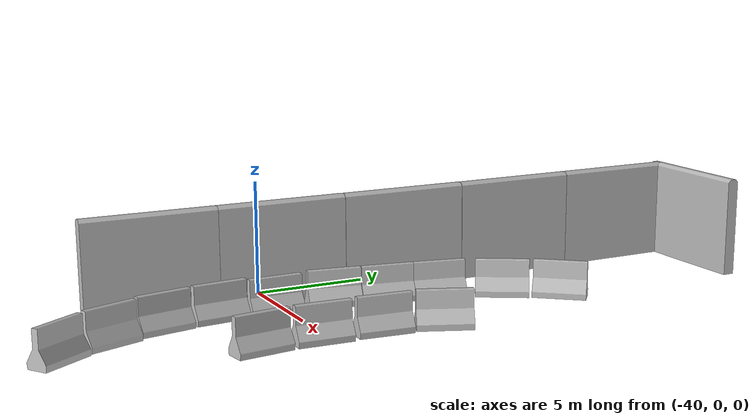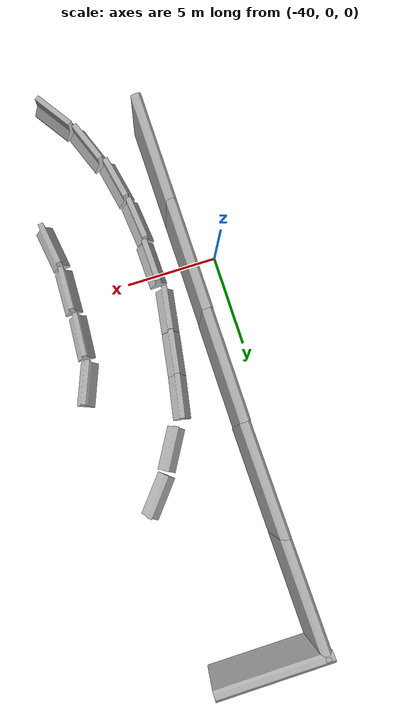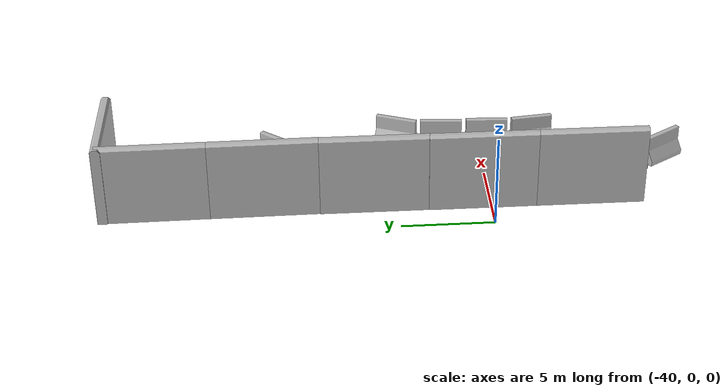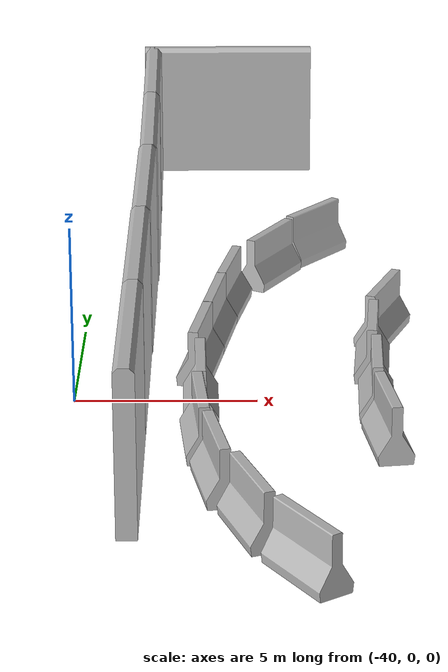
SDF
<sdf version="1.7">
 <world name="default">
  <model name="aws_robomaker_racetrack_StonePier_01_45">
   <frame name="aws_StonePier_01::__model__" attached_to="aws_StonePier_01::body">
    <pose relative_to="__model__">0 0 0 0 -0 0</pose>
   </frame>
   <link name="aws_StonePier_01::body">
    <pose relative_to="aws_StonePier_01::__model__">0 0 0 0 -0 0</pose>
    <inertial>
     <mass>10</mass>
     <inertia><ixx>0</ixx><ixy>0</ixy><ixz>0</ixz><iyy>0</iyy><iyz>0</iyz><izz>0</izz></inertia>
    </inertial>
    <visual name="visual">
     <geometry>
      <mesh><uri>file://models/aws_robomaker_racetrack_StonePier_01/meshes/aws_StonePier_01_visual.DAE</uri></mesh>
     </geometry>
     <material><shader type="pixel"><normal_map>__default__</normal_map></shader></material>
     <meta><layer>0</layer></meta>
    </visual>
    <collision name="collision_0">
     <geometry>
      <mesh>
       <uri>file://models/aws_robomaker_racetrack_StonePier_01/meshes/aws_StonePier_01_collision.DAE</uri>
       <scale>1 1 1</scale>
      </mesh>
     </geometry>
     <surface>
      <friction>
       <ode><mu>1</mu><mu2>1</mu2><fdir1>0 0 0</fdir1><slip1>0</slip1><slip2>0</slip2></ode>
       <torsional>
        <coefficient>1</coefficient>
        <patch_radius>0</patch_radius>
        <surface_radius>0</surface_radius>
        <use_patch_radius>1</use_patch_radius>
        <ode><slip>0</slip></ode>
       </torsional>
      </friction>
      <bounce><restitution_coefficient>0</restitution_coefficient><threshold>1e+06</threshold></bounce>
      <contact>
       <collide_without_contact>0</collide_without_contact>
       <collide_without_contact_bitmask>1</collide_without_contact_bitmask>
       <collide_bitmask>1</collide_bitmask>
       <ode>
        <soft_cfm>0</soft_cfm>
        <soft_erp>0.2</soft_erp>
        <kp>1e+13</kp>
        <kd>1</kd>
        <max_vel>0.01</max_vel>
        <min_depth>0</min_depth>
       </ode>
       <bullet>
        <split_impulse>1</split_impulse>
        <split_impulse_penetration_threshold>-0.01</split_impulse_penetration_threshold>
        <soft_cfm>0</soft_cfm>
        <soft_erp>0.2</soft_erp>
        <kp>1e+13</kp>
        <kd>1</kd>
       </bullet>
      </contact>
     </surface>
    </collision>
   </link>
   <static>1</static>
   <pose>-31.6395 -3.07904 0.054 0 0 -1.43795</pose>
  </model>
  <model name="aws_robomaker_racetrack_StonePier_01_46">
   <frame name="aws_StonePier_01::__model__" attached_to="aws_StonePier_01::body">
    <pose relative_to="__model__">0 0 0 0 -0 0</pose>
   </frame>
   <link name="aws_StonePier_01::body">
    <pose relative_to="aws_StonePier_01::__model__">0 0 0 0 -0 0</pose>
    <inertial>
     <mass>10</mass>
     <inertia><ixx>0</ixx><ixy>0</ixy><ixz>0</ixz><iyy>0</iyy><iyz>0</iyz><izz>0</izz></inertia>
    </inertial>
    <visual name="visual">
     <geometry>
      <mesh><uri>file://models/aws_robomaker_racetrack_StonePier_01/meshes/aws_StonePier_01_visual.DAE</uri></mesh>
     </geometry>
     <material><shader type="pixel"><normal_map>__default__</normal_map></shader></material>
     <meta><layer>0</layer></meta>
    </visual>
    <collision name="collision_0">
     <geometry>
      <mesh>
       <uri>file://models/aws_robomaker_racetrack_StonePier_01/meshes/aws_StonePier_01_collision.DAE</uri>
       <scale>1 1 1</scale>
      </mesh>
     </geometry>
     <surface>
      <friction>
       <ode><mu>1</mu><mu2>1</mu2><fdir1>0 0 0</fdir1><slip1>0</slip1><slip2>0</slip2></ode>
       <torsional>
        <coefficient>1</coefficient>
        <patch_radius>0</patch_radius>
        <surface_radius>0</surface_radius>
        <use_patch_radius>1</use_patch_radius>
        <ode><slip>0</slip></ode>
       </torsional>
      </friction>
      <bounce><restitution_coefficient>0</restitution_coefficient><threshold>1e+06</threshold></bounce>
      <contact>
       <collide_without_contact>0</collide_without_contact>
       <collide_without_contact_bitmask>1</collide_without_contact_bitmask>
       <collide_bitmask>1</collide_bitmask>
       <ode>
        <soft_cfm>0</soft_cfm>
        <soft_erp>0.2</soft_erp>
        <kp>1e+13</kp>
        <kd>1</kd>
        <max_vel>0.01</max_vel>
        <min_depth>0</min_depth>
       </ode>
       <bullet>
        <split_impulse>1</split_impulse>
        <split_impulse_penetration_threshold>-0.01</split_impulse_penetration_threshold>
        <soft_cfm>0</soft_cfm>
        <soft_erp>0.2</soft_erp>
        <kp>1e+13</kp>
        <kd>1</kd>
       </bullet>
      </contact>
     </surface>
    </collision>
   </link>
   <static>1</static>
   <pose>-31.7709 -0.48849 0.054 0 0 -1.61074</pose>
  </model>
  <model name="aws_robomaker_racetrack_StonePier_01_47">
   <frame name="aws_StonePier_01::__model__" attached_to="aws_StonePier_01::body">
    <pose relative_to="__model__">0 0 0 0 -0 0</pose>
   </frame>
   <link name="aws_StonePier_01::body">
    <pose relative_to="aws_StonePier_01::__model__">0 0 0 0 -0 0</pose>
    <inertial>
     <mass>10</mass>
     <inertia><ixx>0</ixx><ixy>0</ixy><ixz>0</ixz><iyy>0</iyy><iyz>0</iyz><izz>0</izz></inertia>
    </inertial>
    <visual name="visual">
     <geometry>
      <mesh><uri>file://models/aws_robomaker_racetrack_StonePier_01/meshes/aws_StonePier_01_visual.DAE</uri></mesh>
     </geometry>
     <material><shader type="pixel"><normal_map>__default__</normal_map></shader></material>
     <meta><layer>0</layer></meta>
    </visual>
    <collision name="collision_0">
     <geometry>
      <mesh>
       <uri>file://models/aws_robomaker_racetrack_StonePier_01/meshes/aws_StonePier_01_collision.DAE</uri>
       <scale>1 1 1</scale>
      </mesh>
     </geometry>
     <surface>
      <friction>
       <ode><mu>1</mu><mu2>1</mu2><fdir1>0 0 0</fdir1><slip1>0</slip1><slip2>0</slip2></ode>
       <torsional>
        <coefficient>1</coefficient>
        <patch_radius>0</patch_radius>
        <surface_radius>0</surface_radius>
        <use_patch_radius>1</use_patch_radius>
        <ode><slip>0</slip></ode>
       </torsional>
      </friction>
      <bounce><restitution_coefficient>0</restitution_coefficient><threshold>1e+06</threshold></bounce>
      <contact>
       <collide_without_contact>0</collide_without_contact>
       <collide_without_contact_bitmask>1</collide_without_contact_bitmask>
       <collide_bitmask>1</collide_bitmask>
       <ode>
        <soft_cfm>0</soft_cfm>
        <soft_erp>0.2</soft_erp>
        <kp>1e+13</kp>
        <kd>1</kd>
        <max_vel>0.01</max_vel>
        <min_depth>0</min_depth>
       </ode>
       <bullet>
        <split_impulse>1</split_impulse>
        <split_impulse_penetration_threshold>-0.01</split_impulse_penetration_threshold>
        <soft_cfm>0</soft_cfm>
        <soft_erp>0.2</soft_erp>
        <kp>1e+13</kp>
        <kd>1</kd>
       </bullet>
      </contact>
     </surface>
    </collision>
   </link>
   <static>1</static>
   <pose>-31.7363 2.12666 0.054 0 0 -1.64853</pose>
  </model>
  <model name="aws_robomaker_racetrack_StonePier_01_48">
   <frame name="aws_StonePier_01::__model__" attached_to="aws_StonePier_01::body">
    <pose relative_to="__model__">0 0 0 0 -0 0</pose>
   </frame>
   <link name="aws_StonePier_01::body">
    <pose relative_to="aws_StonePier_01::__model__">0 0 0 0 -0 0</pose>
    <inertial>
     <mass>10</mass>
     <inertia><ixx>0</ixx><ixy>0</ixy><ixz>0</ixz><iyy>0</iyy><iyz>0</iyz><izz>0</izz></inertia>
    </inertial>
    <visual name="visual">
     <geometry>
      <mesh><uri>file://models/aws_robomaker_racetrack_StonePier_01/meshes/aws_StonePier_01_visual.DAE</uri></mesh>
     </geometry>
     <material><shader type="pixel"><normal_map>__default__</normal_map></shader></material>
     <meta><layer>0</layer></meta>
    </visual>
    <collision name="collision_0">
     <geometry>
      <mesh>
       <uri>file://models/aws_robomaker_racetrack_StonePier_01/meshes/aws_StonePier_01_collision.DAE</uri>
       <scale>1 1 1</scale>
      </mesh>
     </geometry>
     <surface>
      <friction>
       <ode><mu>1</mu><mu2>1</mu2><fdir1>0 0 0</fdir1><slip1>0</slip1><slip2>0</slip2></ode>
       <torsional>
        <coefficient>1</coefficient>
        <patch_radius>0</patch_radius>
        <surface_radius>0</surface_radius>
        <use_patch_radius>1</use_patch_radius>
        <ode><slip>0</slip></ode>
       </torsional>
      </friction>
      <bounce><restitution_coefficient>0</restitution_coefficient><threshold>1e+06</threshold></bounce>
      <contact>
       <collide_without_contact>0</collide_without_contact>
       <collide_without_contact_bitmask>1</collide_without_contact_bitmask>
       <collide_bitmask>1</collide_bitmask>
       <ode>
        <soft_cfm>0</soft_cfm>
        <soft_erp>0.2</soft_erp>
        <kp>1e+13</kp>
        <kd>1</kd>
        <max_vel>0.01</max_vel>
        <min_depth>0</min_depth>
       </ode>
       <bullet>
        <split_impulse>1</split_impulse>
        <split_impulse_penetration_threshold>-0.01</split_impulse_penetration_threshold>
        <soft_cfm>0</soft_cfm>
        <soft_erp>0.2</soft_erp>
        <kp>1e+13</kp>
        <kd>1</kd>
       </bullet>
      </contact>
     </surface>
    </collision>
   </link>
   <static>1</static>
   <pose>-31.2901 4.63965 0.054 0 0 -1.9545</pose>
  </model>
  <model name="aws_robomaker_racetrack_StonePier_01_55">
   <frame name="aws_StonePier_01::__model__" attached_to="aws_StonePier_01::body">
    <pose relative_to="__model__">0 0 0 0 -0 0</pose>
   </frame>
   <link name="aws_StonePier_01::body">
    <pose relative_to="aws_StonePier_01::__model__">0 0 0 0 -0 0</pose>
    <inertial>
     <mass>10</mass>
     <inertia><ixx>0</ixx><ixy>0</ixy><ixz>0</ixz><iyy>0</iyy><iyz>0</iyz><izz>0</izz></inertia>
    </inertial>
    <visual name="visual">
     <geometry>
      <mesh><uri>file://models/aws_robomaker_racetrack_StonePier_01/meshes/aws_StonePier_01_visual.DAE</uri></mesh>
     </geometry>
     <material><shader type="pixel"><normal_map>__default__</normal_map></shader></material>
     <meta><layer>0</layer></meta>
    </visual>
    <collision name="collision_0">
     <geometry>
      <mesh>
       <uri>file://models/aws_robomaker_racetrack_StonePier_01/meshes/aws_StonePier_01_collision.DAE</uri>
       <scale>1 1 1</scale>
      </mesh>
     </geometry>
     <surface>
      <friction>
       <ode><mu>1</mu><mu2>1</mu2><fdir1>0 0 0</fdir1><slip1>0</slip1><slip2>0</slip2></ode>
       <torsional>
        <coefficient>1</coefficient>
        <patch_radius>0</patch_radius>
        <surface_radius>0</surface_radius>
        <use_patch_radius>1</use_patch_radius>
        <ode><slip>0</slip></ode>
       </torsional>
      </friction>
      <bounce><restitution_coefficient>0</restitution_coefficient><threshold>1e+06</threshold></bounce>
      <contact>
       <collide_without_contact>0</collide_without_contact>
       <collide_without_contact_bitmask>1</collide_without_contact_bitmask>
       <collide_bitmask>1</collide_bitmask>
       <ode>
        <soft_cfm>0</soft_cfm>
        <soft_erp>0.2</soft_erp>
        <kp>1e+13</kp>
        <kd>1</kd>
        <max_vel>0.01</max_vel>
        <min_depth>0</min_depth>
       </ode>
       <bullet>
        <split_impulse>1</split_impulse>
        <split_impulse_penetration_threshold>-0.01</split_impulse_penetration_threshold>
        <soft_cfm>0</soft_cfm>
        <soft_erp>0.2</soft_erp>
        <kp>1e+13</kp>
        <kd>1</kd>
       </bullet>
      </contact>
     </surface>
    </collision>
   </link>
   <static>1</static>
   <pose>-33.9725 -10.1825 0.054 0 -0 2.15404</pose>
  </model>
  <model name="aws_robomaker_racetrack_StonePier_01_56">
   <frame name="aws_StonePier_01::__model__" attached_to="aws_StonePier_01::body">
    <pose relative_to="__model__">0 0 0 0 -0 0</pose>
   </frame>
   <link name="aws_StonePier_01::body">
    <pose relative_to="aws_StonePier_01::__model__">0 0 0 0 -0 0</pose>
    <inertial>
     <mass>10</mass>
     <inertia><ixx>0</ixx><ixy>0</ixy><ixz>0</ixz><iyy>0</iyy><iyz>0</iyz><izz>0</izz></inertia>
    </inertial>
    <visual name="visual">
     <geometry>
      <mesh><uri>file://models/aws_robomaker_racetrack_StonePier_01/meshes/aws_StonePier_01_visual.DAE</uri></mesh>
     </geometry>
     <material><shader type="pixel"><normal_map>__default__</normal_map></shader></material>
     <meta><layer>0</layer></meta>
    </visual>
    <collision name="collision_0">
     <geometry>
      <mesh>
       <uri>file://models/aws_robomaker_racetrack_StonePier_01/meshes/aws_StonePier_01_collision.DAE</uri>
       <scale>1 1 1</scale>
      </mesh>
     </geometry>
     <surface>
      <friction>
       <ode><mu>1</mu><mu2>1</mu2><fdir1>0 0 0</fdir1><slip1>0</slip1><slip2>0</slip2></ode>
       <torsional>
        <coefficient>1</coefficient>
        <patch_radius>0</patch_radius>
        <surface_radius>0</surface_radius>
        <use_patch_radius>1</use_patch_radius>
        <ode><slip>0</slip></ode>
       </torsional>
      </friction>
      <bounce><restitution_coefficient>0</restitution_coefficient><threshold>1e+06</threshold></bounce>
      <contact>
       <collide_without_contact>0</collide_without_contact>
       <collide_without_contact_bitmask>1</collide_without_contact_bitmask>
       <collide_bitmask>1</collide_bitmask>
       <ode>
        <soft_cfm>0</soft_cfm>
        <soft_erp>0.2</soft_erp>
        <kp>1e+13</kp>
        <kd>1</kd>
        <max_vel>0.01</max_vel>
        <min_depth>0</min_depth>
       </ode>
       <bullet>
        <split_impulse>1</split_impulse>
        <split_impulse_penetration_threshold>-0.01</split_impulse_penetration_threshold>
        <soft_cfm>0</soft_cfm>
        <soft_erp>0.2</soft_erp>
        <kp>1e+13</kp>
        <kd>1</kd>
       </bullet>
      </contact>
     </surface>
    </collision>
   </link>
   <static>1</static>
   <pose>-35.2144 -7.92381 0.054 0 -0 1.91826</pose>
  </model>
  <model name="aws_robomaker_racetrack_StonePier_01_57">
   <frame name="aws_StonePier_01::__model__" attached_to="aws_StonePier_01::body">
    <pose relative_to="__model__">0 0 0 0 -0 0</pose>
   </frame>
   <link name="aws_StonePier_01::body">
    <pose relative_to="aws_StonePier_01::__model__">0 0 0 0 -0 0</pose>
    <inertial>
     <mass>10</mass>
     <inertia><ixx>0</ixx><ixy>0</ixy><ixz>0</ixz><iyy>0</iyy><iyz>0</iyz><izz>0</izz></inertia>
    </inertial>
    <visual name="visual">
     <geometry>
      <mesh><uri>file://models/aws_robomaker_racetrack_StonePier_01/meshes/aws_StonePier_01_visual.DAE</uri></mesh>
     </geometry>
     <material><shader type="pixel"><normal_map>__default__</normal_map></shader></material>
     <meta><layer>0</layer></meta>
    </visual>
    <collision name="collision_0">
     <geometry>
      <mesh>
       <uri>file://models/aws_robomaker_racetrack_StonePier_01/meshes/aws_StonePier_01_collision.DAE</uri>
       <scale>1 1 1</scale>
      </mesh>
     </geometry>
     <surface>
      <friction>
       <ode><mu>1</mu><mu2>1</mu2><fdir1>0 0 0</fdir1><slip1>0</slip1><slip2>0</slip2></ode>
       <torsional>
        <coefficient>1</coefficient>
        <patch_radius>0</patch_radius>
        <surface_radius>0</surface_radius>
        <use_patch_radius>1</use_patch_radius>
        <ode><slip>0</slip></ode>
       </torsional>
      </friction>
      <bounce><restitution_coefficient>0</restitution_coefficient><threshold>1e+06</threshold></bounce>
      <contact>
       <collide_without_contact>0</collide_without_contact>
       <collide_without_contact_bitmask>1</collide_without_contact_bitmask>
       <collide_bitmask>1</collide_bitmask>
       <ode>
        <soft_cfm>0</soft_cfm>
        <soft_erp>0.2</soft_erp>
        <kp>1e+13</kp>
        <kd>1</kd>
        <max_vel>0.01</max_vel>
        <min_depth>0</min_depth>
       </ode>
       <bullet>
        <split_impulse>1</split_impulse>
        <split_impulse_penetration_threshold>-0.01</split_impulse_penetration_threshold>
        <soft_cfm>0</soft_cfm>
        <soft_erp>0.2</soft_erp>
        <kp>1e+13</kp>
        <kd>1</kd>
       </bullet>
      </contact>
     </surface>
    </collision>
   </link>
   <static>1</static>
   <pose>-36.4999 -3.03273 0.054 -0 0.00036 -1.47965</pose>
  </model>
  <model name="aws_robomaker_racetrack_StonePier_01_58">
   <frame name="aws_StonePier_01::__model__" attached_to="aws_StonePier_01::body">
    <pose relative_to="__model__">0 0 0 0 -0 0</pose>
   </frame>
   <link name="aws_StonePier_01::body">
    <pose relative_to="aws_StonePier_01::__model__">0 0 0 0 -0 0</pose>
    <inertial>
     <mass>10</mass>
     <inertia><ixx>0</ixx><ixy>0</ixy><ixz>0</ixz><iyy>0</iyy><iyz>0</iyz><izz>0</izz></inertia>
    </inertial>
    <visual name="visual">
     <geometry>
      <mesh><uri>file://models/aws_robomaker_racetrack_StonePier_01/meshes/aws_StonePier_01_visual.DAE</uri></mesh>
     </geometry>
     <material><shader type="pixel"><normal_map>__default__</normal_map></shader></material>
     <meta><layer>0</layer></meta>
    </visual>
    <collision name="collision_0">
     <geometry>
      <mesh>
       <uri>file://models/aws_robomaker_racetrack_StonePier_01/meshes/aws_StonePier_01_collision.DAE</uri>
       <scale>1 1 1</scale>
      </mesh>
     </geometry>
     <surface>
      <friction>
       <ode><mu>1</mu><mu2>1</mu2><fdir1>0 0 0</fdir1><slip1>0</slip1><slip2>0</slip2></ode>
       <torsional>
        <coefficient>1</coefficient>
        <patch_radius>0</patch_radius>
        <surface_radius>0</surface_radius>
        <use_patch_radius>1</use_patch_radius>
        <ode><slip>0</slip></ode>
       </torsional>
      </friction>
      <bounce><restitution_coefficient>0</restitution_coefficient><threshold>1e+06</threshold></bounce>
      <contact>
       <collide_without_contact>0</collide_without_contact>
       <collide_without_contact_bitmask>1</collide_without_contact_bitmask>
       <collide_bitmask>1</collide_bitmask>
       <ode>
        <soft_cfm>0</soft_cfm>
        <soft_erp>0.2</soft_erp>
        <kp>1e+13</kp>
        <kd>1</kd>
        <max_vel>0.01</max_vel>
        <min_depth>0</min_depth>
       </ode>
       <bullet>
        <split_impulse>1</split_impulse>
        <split_impulse_penetration_threshold>-0.01</split_impulse_penetration_threshold>
        <soft_cfm>0</soft_cfm>
        <soft_erp>0.2</soft_erp>
        <kp>1e+13</kp>
        <kd>1</kd>
       </bullet>
      </contact>
     </surface>
    </collision>
   </link>
   <static>1</static>
   <pose>-36.5369 -0.578473 -0.000468 -0 0.000348 1.59189</pose>
  </model>
  <model name="aws_robomaker_racetrack_StonePier_01_59">
   <frame name="aws_StonePier_01::__model__" attached_to="aws_StonePier_01::body">
    <pose relative_to="__model__">0 0 0 0 -0 0</pose>
   </frame>
   <link name="aws_StonePier_01::body">
    <pose relative_to="aws_StonePier_01::__model__">0 0 0 0 -0 0</pose>
    <inertial>
     <mass>10</mass>
     <inertia><ixx>0</ixx><ixy>0</ixy><ixz>0</ixz><iyy>0</iyy><iyz>0</iyz><izz>0</izz></inertia>
    </inertial>
    <visual name="visual">
     <geometry>
      <mesh><uri>file://models/aws_robomaker_racetrack_StonePier_01/meshes/aws_StonePier_01_visual.DAE</uri></mesh>
     </geometry>
     <material><shader type="pixel"><normal_map>__default__</normal_map></shader></material>
     <meta><layer>0</layer></meta>
    </visual>
    <collision name="collision_0">
     <geometry>
      <mesh>
       <uri>file://models/aws_robomaker_racetrack_StonePier_01/meshes/aws_StonePier_01_collision.DAE</uri>
       <scale>1 1 1</scale>
      </mesh>
     </geometry>
     <surface>
      <friction>
       <ode><mu>1</mu><mu2>1</mu2><fdir1>0 0 0</fdir1><slip1>0</slip1><slip2>0</slip2></ode>
       <torsional>
        <coefficient>1</coefficient>
        <patch_radius>0</patch_radius>
        <surface_radius>0</surface_radius>
        <use_patch_radius>1</use_patch_radius>
        <ode><slip>0</slip></ode>
       </torsional>
      </friction>
      <bounce><restitution_coefficient>0</restitution_coefficient><threshold>1e+06</threshold></bounce>
      <contact>
       <collide_without_contact>0</collide_without_contact>
       <collide_without_contact_bitmask>1</collide_without_contact_bitmask>
       <collide_bitmask>1</collide_bitmask>
       <ode>
        <soft_cfm>0</soft_cfm>
        <soft_erp>0.2</soft_erp>
        <kp>1e+13</kp>
        <kd>1</kd>
        <max_vel>0.01</max_vel>
        <min_depth>0</min_depth>
       </ode>
       <bullet>
        <split_impulse>1</split_impulse>
        <split_impulse_penetration_threshold>-0.01</split_impulse_penetration_threshold>
        <soft_cfm>0</soft_cfm>
        <soft_erp>0.2</soft_erp>
        <kp>1e+13</kp>
        <kd>1</kd>
       </bullet>
      </contact>
     </surface>
    </collision>
   </link>
   <static>1</static>
   <pose>-36.0789 -5.53149 0.054 0 -0 1.76121</pose>
  </model>
  <model name="aws_robomaker_racetrack_StonePier_01_60">
   <frame name="aws_StonePier_01::__model__" attached_to="aws_StonePier_01::body">
    <pose relative_to="__model__">0 0 0 0 -0 0</pose>
   </frame>
   <link name="aws_StonePier_01::body">
    <pose relative_to="aws_StonePier_01::__model__">0 0 0 0 -0 0</pose>
    <inertial>
     <mass>10</mass>
     <inertia><ixx>0</ixx><ixy>0</ixy><ixz>0</ixz><iyy>0</iyy><iyz>0</iyz><izz>0</izz></inertia>
    </inertial>
    <visual name="visual">
     <geometry>
      <mesh><uri>file://models/aws_robomaker_racetrack_StonePier_01/meshes/aws_StonePier_01_visual.DAE</uri></mesh>
     </geometry>
     <material><shader type="pixel"><normal_map>__default__</normal_map></shader></material>
     <meta><layer>0</layer></meta>
    </visual>
    <collision name="collision_0">
     <geometry>
      <mesh>
       <uri>file://models/aws_robomaker_racetrack_StonePier_01/meshes/aws_StonePier_01_collision.DAE</uri>
       <scale>1 1 1</scale>
      </mesh>
     </geometry>
     <surface>
      <friction>
       <ode><mu>1</mu><mu2>1</mu2><fdir1>0 0 0</fdir1><slip1>0</slip1><slip2>0</slip2></ode>
       <torsional>
        <coefficient>1</coefficient>
        <patch_radius>0</patch_radius>
        <surface_radius>0</surface_radius>
        <use_patch_radius>1</use_patch_radius>
        <ode><slip>0</slip></ode>
       </torsional>
      </friction>
      <bounce><restitution_coefficient>0</restitution_coefficient><threshold>1e+06</threshold></bounce>
      <contact>
       <collide_without_contact>0</collide_without_contact>
       <collide_without_contact_bitmask>1</collide_without_contact_bitmask>
       <collide_bitmask>1</collide_bitmask>
       <ode>
        <soft_cfm>0</soft_cfm>
        <soft_erp>0.2</soft_erp>
        <kp>1e+13</kp>
        <kd>1</kd>
        <max_vel>0.01</max_vel>
        <min_depth>0</min_depth>
       </ode>
       <bullet>
        <split_impulse>1</split_impulse>
        <split_impulse_penetration_threshold>-0.01</split_impulse_penetration_threshold>
        <soft_cfm>0</soft_cfm>
        <soft_erp>0.2</soft_erp>
        <kp>1e+13</kp>
        <kd>1</kd>
       </bullet>
      </contact>
     </surface>
    </collision>
   </link>
   <static>1</static>
   <pose>-36.5742 2.13483 -4.9e-05 -4.8e-05 -6.2e-05 1.40891</pose>
  </model>
  <model name="aws_robomaker_racetrack_StonePier_01_61">
   <frame name="aws_StonePier_01::__model__" attached_to="aws_StonePier_01::body">
    <pose relative_to="__model__">0 0 0 0 -0 0</pose>
   </frame>
   <link name="aws_StonePier_01::body">
    <pose relative_to="aws_StonePier_01::__model__">0 0 0 0 -0 0</pose>
    <inertial>
     <mass>10</mass>
     <inertia><ixx>0</ixx><ixy>0</ixy><ixz>0</ixz><iyy>0</iyy><iyz>0</iyz><izz>0</izz></inertia>
    </inertial>
    <visual name="visual">
     <geometry>
      <mesh><uri>file://models/aws_robomaker_racetrack_StonePier_01/meshes/aws_StonePier_01_visual.DAE</uri></mesh>
     </geometry>
     <material><shader type="pixel"><normal_map>__default__</normal_map></shader></material>
     <meta><layer>0</layer></meta>
    </visual>
    <collision name="collision_0">
     <geometry>
      <mesh>
       <uri>file://models/aws_robomaker_racetrack_StonePier_01/meshes/aws_StonePier_01_collision.DAE</uri>
       <scale>1 1 1</scale>
      </mesh>
     </geometry>
     <surface>
      <friction>
       <ode><mu>1</mu><mu2>1</mu2><fdir1>0 0 0</fdir1><slip1>0</slip1><slip2>0</slip2></ode>
       <torsional>
        <coefficient>1</coefficient>
        <patch_radius>0</patch_radius>
        <surface_radius>0</surface_radius>
        <use_patch_radius>1</use_patch_radius>
        <ode><slip>0</slip></ode>
       </torsional>
      </friction>
      <bounce><restitution_coefficient>0</restitution_coefficient><threshold>1e+06</threshold></bounce>
      <contact>
       <collide_without_contact>0</collide_without_contact>
       <collide_without_contact_bitmask>1</collide_without_contact_bitmask>
       <collide_bitmask>1</collide_bitmask>
       <ode>
        <soft_cfm>0</soft_cfm>
        <soft_erp>0.2</soft_erp>
        <kp>1e+13</kp>
        <kd>1</kd>
        <max_vel>0.01</max_vel>
        <min_depth>0</min_depth>
       </ode>
       <bullet>
        <split_impulse>1</split_impulse>
        <split_impulse_penetration_threshold>-0.01</split_impulse_penetration_threshold>
        <soft_cfm>0</soft_cfm>
        <soft_erp>0.2</soft_erp>
        <kp>1e+13</kp>
        <kd>1</kd>
       </bullet>
      </contact>
     </surface>
    </collision>
   </link>
   <static>1</static>
   <pose>-36.1891 4.48288 0.000698 -7e-05 -0.000662 1.40758</pose>
  </model>
  <model name="aws_robomaker_racetrack_StonePier_01_62">
   <frame name="aws_StonePier_01::__model__" attached_to="aws_StonePier_01::body">
    <pose relative_to="__model__">0 0 0 0 -0 0</pose>
   </frame>
   <link name="aws_StonePier_01::body">
    <pose relative_to="aws_StonePier_01::__model__">0 0 0 0 -0 0</pose>
    <inertial>
     <mass>10</mass>
     <inertia><ixx>0</ixx><ixy>0</ixy><ixz>0</ixz><iyy>0</iyy><iyz>0</iyz><izz>0</izz></inertia>
    </inertial>
    <visual name="visual">
     <geometry>
      <mesh><uri>file://models/aws_robomaker_racetrack_StonePier_01/meshes/aws_StonePier_01_visual.DAE</uri></mesh>
     </geometry>
     <material><shader type="pixel"><normal_map>__default__</normal_map></shader></material>
     <meta><layer>0</layer></meta>
    </visual>
    <collision name="collision_0">
     <geometry>
      <mesh>
       <uri>file://models/aws_robomaker_racetrack_StonePier_01/meshes/aws_StonePier_01_collision.DAE</uri>
       <scale>1 1 1</scale>
      </mesh>
     </geometry>
     <surface>
      <friction>
       <ode><mu>1</mu><mu2>1</mu2><fdir1>0 0 0</fdir1><slip1>0</slip1><slip2>0</slip2></ode>
       <torsional>
        <coefficient>1</coefficient>
        <patch_radius>0</patch_radius>
        <surface_radius>0</surface_radius>
        <use_patch_radius>1</use_patch_radius>
        <ode><slip>0</slip></ode>
       </torsional>
      </friction>
      <bounce><restitution_coefficient>0</restitution_coefficient><threshold>1e+06</threshold></bounce>
      <contact>
       <collide_without_contact>0</collide_without_contact>
       <collide_without_contact_bitmask>1</collide_without_contact_bitmask>
       <collide_bitmask>1</collide_bitmask>
       <ode>
        <soft_cfm>0</soft_cfm>
        <soft_erp>0.2</soft_erp>
        <kp>1e+13</kp>
        <kd>1</kd>
        <max_vel>0.01</max_vel>
        <min_depth>0</min_depth>
       </ode>
       <bullet>
        <split_impulse>1</split_impulse>
        <split_impulse_penetration_threshold>-0.01</split_impulse_penetration_threshold>
        <soft_cfm>0</soft_cfm>
        <soft_erp>0.2</soft_erp>
        <kp>1e+13</kp>
        <kd>1</kd>
       </bullet>
      </contact>
     </surface>
    </collision>
   </link>
   <static>1</static>
   <pose>-35.7706 6.79941 0.00067 5.5e-05 0.000534 1.37633</pose>
  </model>
  <model name="aws_robomaker_racetrack_StonePier_01_63">
   <frame name="aws_StonePier_01::__model__" attached_to="aws_StonePier_01::body">
    <pose relative_to="__model__">0 0 0 0 -0 0</pose>
   </frame>
   <link name="aws_StonePier_01::body">
    <pose relative_to="aws_StonePier_01::__model__">0 0 0 0 -0 0</pose>
    <inertial>
     <mass>10</mass>
     <inertia><ixx>0</ixx><ixy>0</ixy><ixz>0</ixz><iyy>0</iyy><iyz>0</iyz><izz>0</izz></inertia>
    </inertial>
    <visual name="visual">
     <geometry>
      <mesh><uri>file://models/aws_robomaker_racetrack_StonePier_01/meshes/aws_StonePier_01_visual.DAE</uri></mesh>
     </geometry>
     <material><shader type="pixel"><normal_map>__default__</normal_map></shader></material>
     <meta><layer>0</layer></meta>
    </visual>
    <collision name="collision_0">
     <geometry>
      <mesh>
       <uri>file://models/aws_robomaker_racetrack_StonePier_01/meshes/aws_StonePier_01_collision.DAE</uri>
       <scale>1 1 1</scale>
      </mesh>
     </geometry>
     <surface>
      <friction>
       <ode><mu>1</mu><mu2>1</mu2><fdir1>0 0 0</fdir1><slip1>0</slip1><slip2>0</slip2></ode>
       <torsional>
        <coefficient>1</coefficient>
        <patch_radius>0</patch_radius>
        <surface_radius>0</surface_radius>
        <use_patch_radius>1</use_patch_radius>
        <ode><slip>0</slip></ode>
       </torsional>
      </friction>
      <bounce><restitution_coefficient>0</restitution_coefficient><threshold>1e+06</threshold></bounce>
      <contact>
       <collide_without_contact>0</collide_without_contact>
       <collide_without_contact_bitmask>1</collide_without_contact_bitmask>
       <collide_bitmask>1</collide_bitmask>
       <ode>
        <soft_cfm>0</soft_cfm>
        <soft_erp>0.2</soft_erp>
        <kp>1e+13</kp>
        <kd>1</kd>
        <max_vel>0.01</max_vel>
        <min_depth>0</min_depth>
       </ode>
       <bullet>
        <split_impulse>1</split_impulse>
        <split_impulse_penetration_threshold>-0.01</split_impulse_penetration_threshold>
        <soft_cfm>0</soft_cfm>
        <soft_erp>0.2</soft_erp>
        <kp>1e+13</kp>
        <kd>1</kd>
       </bullet>
      </contact>
     </surface>
    </collision>
   </link>
   <static>1</static>
   <pose>-34.5101 9.28526 0.054 0 -0 1.03684</pose>
  </model>
  <model name="aws_robomaker_racetrack_StonePier_01_64">
   <frame name="aws_StonePier_01::__model__" attached_to="aws_StonePier_01::body">
    <pose relative_to="__model__">0 0 0 0 -0 0</pose>
   </frame>
   <link name="aws_StonePier_01::body">
    <pose relative_to="aws_StonePier_01::__model__">0 0 0 0 -0 0</pose>
    <inertial>
     <mass>10</mass>
     <inertia><ixx>0</ixx><ixy>0</ixy><ixz>0</ixz><iyy>0</iyy><iyz>0</iyz><izz>0</izz></inertia>
    </inertial>
    <visual name="visual">
     <geometry>
      <mesh><uri>file://models/aws_robomaker_racetrack_StonePier_01/meshes/aws_StonePier_01_visual.DAE</uri></mesh>
     </geometry>
     <material><shader type="pixel"><normal_map>__default__</normal_map></shader></material>
     <meta><layer>0</layer></meta>
    </visual>
    <collision name="collision_0">
     <geometry>
      <mesh>
       <uri>file://models/aws_robomaker_racetrack_StonePier_01/meshes/aws_StonePier_01_collision.DAE</uri>
       <scale>1 1 1</scale>
      </mesh>
     </geometry>
     <surface>
      <friction>
       <ode><mu>1</mu><mu2>1</mu2><fdir1>0 0 0</fdir1><slip1>0</slip1><slip2>0</slip2></ode>
       <torsional>
        <coefficient>1</coefficient>
        <patch_radius>0</patch_radius>
        <surface_radius>0</surface_radius>
        <use_patch_radius>1</use_patch_radius>
        <ode><slip>0</slip></ode>
       </torsional>
      </friction>
      <bounce><restitution_coefficient>0</restitution_coefficient><threshold>1e+06</threshold></bounce>
      <contact>
       <collide_without_contact>0</collide_without_contact>
       <collide_without_contact_bitmask>1</collide_without_contact_bitmask>
       <collide_bitmask>1</collide_bitmask>
       <ode>
        <soft_cfm>0</soft_cfm>
        <soft_erp>0.2</soft_erp>
        <kp>1e+13</kp>
        <kd>1</kd>
        <max_vel>0.01</max_vel>
        <min_depth>0</min_depth>
       </ode>
       <bullet>
        <split_impulse>1</split_impulse>
        <split_impulse_penetration_threshold>-0.01</split_impulse_penetration_threshold>
        <soft_cfm>0</soft_cfm>
        <soft_erp>0.2</soft_erp>
        <kp>1e+13</kp>
        <kd>1</kd>
       </bullet>
      </contact>
     </surface>
    </collision>
   </link>
   <static>1</static>
   <pose>-33.1083 11.4014 0.054 0 -0 0.877747</pose>
  </model>
  <model name="aws_robomaker_racetrack_Wall_01_08">
   <frame name="aws_Wall_01::__model__" attached_to="aws_Wall_01::body">
    <pose relative_to="__model__">0 0 0 0 -0 0</pose>
   </frame>
   <link name="aws_Wall_01::body">
    <pose relative_to="aws_Wall_01::__model__">0 0 0 0 -0 0</pose>
    <inertial>
     <mass>500</mass>
     <inertia><ixx>1</ixx><ixy>0</ixy><ixz>0</ixz><iyy>1</iyy><iyz>0</iyz><izz>1</izz></inertia>
    </inertial>
    <visual name="visual">
     <geometry>
      <mesh>
       <uri>file://models/aws_robomaker_racetrack_Wall_01/meshes/aws_Wall_01_visual.DAE</uri>
       <scale>2.59853 2.59853 2.59853</scale>
      </mesh>
     </geometry>
     <material><shader type="pixel"><normal_map>__default__</normal_map></shader></material>
     <meta><layer>1</layer></meta>
    </visual>
    <collision name="collision_0">
     <geometry>
      <mesh>
       <uri>file://models/aws_robomaker_racetrack_Wall_01/meshes/aws_Wall_01_collision.DAE</uri>
       <scale>2.59853 2.59853 2.59853</scale>
      </mesh>
     </geometry>
     <surface>
      <friction>
       <ode><mu>1</mu><mu2>1</mu2><fdir1>0 0 0</fdir1><slip1>0</slip1><slip2>0</slip2></ode>
       <torsional>
        <coefficient>1</coefficient>
        <patch_radius>0</patch_radius>
        <surface_radius>0</surface_radius>
        <use_patch_radius>1</use_patch_radius>
        <ode><slip>0</slip></ode>
       </torsional>
      </friction>
      <bounce><restitution_coefficient>0</restitution_coefficient><threshold>1e+06</threshold></bounce>
      <contact>
       <collide_without_contact>0</collide_without_contact>
       <collide_without_contact_bitmask>1</collide_without_contact_bitmask>
       <collide_bitmask>1</collide_bitmask>
       <ode>
        <soft_cfm>0</soft_cfm>
        <soft_erp>0.2</soft_erp>
        <kp>1e+13</kp>
        <kd>1</kd>
        <max_vel>0.01</max_vel>
        <min_depth>0</min_depth>
       </ode>
       <bullet>
        <split_impulse>1</split_impulse>
        <split_impulse_penetration_threshold>-0.01</split_impulse_penetration_threshold>
        <soft_cfm>0</soft_cfm>
        <soft_erp>0.2</soft_erp>
        <kp>1e+13</kp>
        <kd>1</kd>
       </bullet>
      </contact>
     </surface>
    </collision>
   </link>
   <static>1</static>
   <pose>-35.8134 20.6795 0 0 -0 0</pose>
  </model>
  <model name="aws_robomaker_racetrack_Wall_01_24">
   <frame name="aws_Wall_01::__model__" attached_to="aws_Wall_01::body">
    <pose relative_to="__model__">0 0 0 0 -0 0</pose>
   </frame>
   <link name="aws_Wall_01::body">
    <pose relative_to="aws_Wall_01::__model__">0 0 0 0 -0 0</pose>
    <inertial>
     <mass>500</mass>
     <inertia><ixx>1</ixx><ixy>0</ixy><ixz>0</ixz><iyy>1</iyy><iyz>0</iyz><izz>1</izz></inertia>
    </inertial>
    <visual name="visual">
     <geometry>
      <mesh>
       <uri>file://models/aws_robomaker_racetrack_Wall_01/meshes/aws_Wall_01_visual.DAE</uri>
       <scale>2.59853 2.59853 2.59853</scale>
      </mesh>
     </geometry>
     <material><shader type="pixel"><normal_map>__default__</normal_map></shader></material>
     <meta><layer>1</layer></meta>
    </visual>
    <collision name="collision_0">
     <geometry>
      <mesh>
       <uri>file://models/aws_robomaker_racetrack_Wall_01/meshes/aws_Wall_01_collision.DAE</uri>
       <scale>2.59853 2.59853 2.59853</scale>
      </mesh>
     </geometry>
     <surface>
      <friction>
       <ode><mu>1</mu><mu2>1</mu2><fdir1>0 0 0</fdir1><slip1>0</slip1><slip2>0</slip2></ode>
       <torsional>
        <coefficient>1</coefficient>
        <patch_radius>0</patch_radius>
        <surface_radius>0</surface_radius>
        <use_patch_radius>1</use_patch_radius>
        <ode><slip>0</slip></ode>
       </torsional>
      </friction>
      <bounce><restitution_coefficient>0</restitution_coefficient><threshold>1e+06</threshold></bounce>
      <contact>
       <collide_without_contact>0</collide_without_contact>
       <collide_without_contact_bitmask>1</collide_without_contact_bitmask>
       <collide_bitmask>1</collide_bitmask>
       <ode>
        <soft_cfm>0</soft_cfm>
        <soft_erp>0.2</soft_erp>
        <kp>1e+13</kp>
        <kd>1</kd>
        <max_vel>0.01</max_vel>
        <min_depth>0</min_depth>
       </ode>
       <bullet>
        <split_impulse>1</split_impulse>
        <split_impulse_penetration_threshold>-0.01</split_impulse_penetration_threshold>
        <soft_cfm>0</soft_cfm>
        <soft_erp>0.2</soft_erp>
        <kp>1e+13</kp>
        <kd>1</kd>
       </bullet>
      </contact>
     </surface>
    </collision>
   </link>
   <static>1</static>
   <pose>-38.3722 17.8758 0 0 -0 1.58903</pose>
  </model>
  <model name="aws_robomaker_racetrack_Wall_01_25">
   <frame name="aws_Wall_01::__model__" attached_to="aws_Wall_01::body">
    <pose relative_to="__model__">0 0 0 0 -0 0</pose>
   </frame>
   <link name="aws_Wall_01::body">
    <pose relative_to="aws_Wall_01::__model__">0 0 0 0 -0 0</pose>
    <inertial>
     <mass>500</mass>
     <inertia><ixx>1</ixx><ixy>0</ixy><ixz>0</ixz><iyy>1</iyy><iyz>0</iyz><izz>1</izz></inertia>
    </inertial>
    <visual name="visual">
     <geometry>
      <mesh>
       <uri>file://models/aws_robomaker_racetrack_Wall_01/meshes/aws_Wall_01_visual.DAE</uri>
       <scale>2.59853 2.59853 2.59853</scale>
      </mesh>
     </geometry>
     <material><shader type="pixel"><normal_map>__default__</normal_map></shader></material>
     <meta><layer>1</layer></meta>
    </visual>
    <collision name="collision_0">
     <geometry>
      <mesh>
       <uri>file://models/aws_robomaker_racetrack_Wall_01/meshes/aws_Wall_01_collision.DAE</uri>
       <scale>2.59853 2.59853 2.59853</scale>
      </mesh>
     </geometry>
     <surface>
      <friction>
       <ode><mu>1</mu><mu2>1</mu2><fdir1>0 0 0</fdir1><slip1>0</slip1><slip2>0</slip2></ode>
       <torsional>
        <coefficient>1</coefficient>
        <patch_radius>0</patch_radius>
        <surface_radius>0</surface_radius>
        <use_patch_radius>1</use_patch_radius>
        <ode><slip>0</slip></ode>
       </torsional>
      </friction>
      <bounce><restitution_coefficient>0</restitution_coefficient><threshold>1e+06</threshold></bounce>
      <contact>
       <collide_without_contact>0</collide_without_contact>
       <collide_without_contact_bitmask>1</collide_without_contact_bitmask>
       <collide_bitmask>1</collide_bitmask>
       <ode>
        <soft_cfm>0</soft_cfm>
        <soft_erp>0.2</soft_erp>
        <kp>1e+13</kp>
        <kd>1</kd>
        <max_vel>0.01</max_vel>
        <min_depth>0</min_depth>
       </ode>
       <bullet>
        <split_impulse>1</split_impulse>
        <split_impulse_penetration_threshold>-0.01</split_impulse_penetration_threshold>
        <soft_cfm>0</soft_cfm>
        <soft_erp>0.2</soft_erp>
        <kp>1e+13</kp>
        <kd>1</kd>
       </bullet>
      </contact>
     </surface>
    </collision>
   </link>
   <static>1</static>
   <pose>-38.2759 12.1211 0 0 -0 1.58713</pose>
  </model>
  <model name="aws_robomaker_racetrack_Wall_01_26">
   <frame name="aws_Wall_01::__model__" attached_to="aws_Wall_01::body">
    <pose relative_to="__model__">0 0 0 0 -0 0</pose>
   </frame>
   <link name="aws_Wall_01::body">
    <pose relative_to="aws_Wall_01::__model__">0 0 0 0 -0 0</pose>
    <inertial>
     <mass>500</mass>
     <inertia><ixx>1</ixx><ixy>0</ixy><ixz>0</ixz><iyy>1</iyy><iyz>0</iyz><izz>1</izz></inertia>
    </inertial>
    <visual name="visual">
     <geometry>
      <mesh>
       <uri>file://models/aws_robomaker_racetrack_Wall_01/meshes/aws_Wall_01_visual.DAE</uri>
       <scale>2.59853 2.59853 2.59853</scale>
      </mesh>
     </geometry>
     <material><shader type="pixel"><normal_map>__default__</normal_map></shader></material>
     <meta><layer>1</layer></meta>
    </visual>
    <collision name="collision_0">
     <geometry>
      <mesh>
       <uri>file://models/aws_robomaker_racetrack_Wall_01/meshes/aws_Wall_01_collision.DAE</uri>
       <scale>2.59853 2.59853 2.59853</scale>
      </mesh>
     </geometry>
     <surface>
      <friction>
       <ode><mu>1</mu><mu2>1</mu2><fdir1>0 0 0</fdir1><slip1>0</slip1><slip2>0</slip2></ode>
       <torsional>
        <coefficient>1</coefficient>
        <patch_radius>0</patch_radius>
        <surface_radius>0</surface_radius>
        <use_patch_radius>1</use_patch_radius>
        <ode><slip>0</slip></ode>
       </torsional>
      </friction>
      <bounce><restitution_coefficient>0</restitution_coefficient><threshold>1e+06</threshold></bounce>
      <contact>
       <collide_without_contact>0</collide_without_contact>
       <collide_without_contact_bitmask>1</collide_without_contact_bitmask>
       <collide_bitmask>1</collide_bitmask>
       <ode>
        <soft_cfm>0</soft_cfm>
        <soft_erp>0.2</soft_erp>
        <kp>1e+13</kp>
        <kd>1</kd>
        <max_vel>0.01</max_vel>
        <min_depth>0</min_depth>
       </ode>
       <bullet>
        <split_impulse>1</split_impulse>
        <split_impulse_penetration_threshold>-0.01</split_impulse_penetration_threshold>
        <soft_cfm>0</soft_cfm>
        <soft_erp>0.2</soft_erp>
        <kp>1e+13</kp>
        <kd>1</kd>
       </bullet>
      </contact>
     </surface>
    </collision>
   </link>
   <static>1</static>
   <pose>-38.2483 6.29377 0 0 -0 1.57459</pose>
  </model>
  <model name="aws_robomaker_racetrack_Wall_01_27">
   <frame name="aws_Wall_01::__model__" attached_to="aws_Wall_01::body">
    <pose relative_to="__model__">0 0 0 0 -0 0</pose>
   </frame>
   <link name="aws_Wall_01::body">
    <pose relative_to="aws_Wall_01::__model__">0 0 0 0 -0 0</pose>
    <inertial>
     <mass>500</mass>
     <inertia><ixx>1</ixx><ixy>0</ixy><ixz>0</ixz><iyy>1</iyy><iyz>0</iyz><izz>1</izz></inertia>
    </inertial>
    <visual name="visual">
     <geometry>
      <mesh>
       <uri>file://models/aws_robomaker_racetrack_Wall_01/meshes/aws_Wall_01_visual.DAE</uri>
       <scale>2.59853 2.59853 2.59853</scale>
      </mesh>
     </geometry>
     <material><shader type="pixel"><normal_map>__default__</normal_map></shader></material>
     <meta><layer>1</layer></meta>
    </visual>
    <collision name="collision_0">
     <geometry>
      <mesh>
       <uri>file://models/aws_robomaker_racetrack_Wall_01/meshes/aws_Wall_01_collision.DAE</uri>
       <scale>2.59853 2.59853 2.59853</scale>
      </mesh>
     </geometry>
     <surface>
      <friction>
       <ode><mu>1</mu><mu2>1</mu2><fdir1>0 0 0</fdir1><slip1>0</slip1><slip2>0</slip2></ode>
       <torsional>
        <coefficient>1</coefficient>
        <patch_radius>0</patch_radius>
        <surface_radius>0</surface_radius>
        <use_patch_radius>1</use_patch_radius>
        <ode><slip>0</slip></ode>
       </torsional>
      </friction>
      <bounce><restitution_coefficient>0</restitution_coefficient><threshold>1e+06</threshold></bounce>
      <contact>
       <collide_without_contact>0</collide_without_contact>
       <collide_without_contact_bitmask>1</collide_without_contact_bitmask>
       <collide_bitmask>1</collide_bitmask>
       <ode>
        <soft_cfm>0</soft_cfm>
        <soft_erp>0.2</soft_erp>
        <kp>1e+13</kp>
        <kd>1</kd>
        <max_vel>0.01</max_vel>
        <min_depth>0</min_depth>
       </ode>
       <bullet>
        <split_impulse>1</split_impulse>
        <split_impulse_penetration_threshold>-0.01</split_impulse_penetration_threshold>
        <soft_cfm>0</soft_cfm>
        <soft_erp>0.2</soft_erp>
        <kp>1e+13</kp>
        <kd>1</kd>
       </bullet>
      </contact>
     </surface>
    </collision>
   </link>
   <static>1</static>
   <pose>-38.2488 0.480728 0 0 -0 1.57459</pose>
  </model>
  <model name="aws_robomaker_racetrack_Wall_01_28">
   <frame name="aws_Wall_01::__model__" attached_to="aws_Wall_01::body">
    <pose relative_to="__model__">0 0 0 0 -0 0</pose>
   </frame>
   <link name="aws_Wall_01::body">
    <pose relative_to="aws_Wall_01::__model__">0 0 0 0 -0 0</pose>
    <inertial>
     <mass>500</mass>
     <inertia><ixx>1</ixx><ixy>0</ixy><ixz>0</ixz><iyy>1</iyy><iyz>0</iyz><izz>1</izz></inertia>
    </inertial>
    <visual name="visual">
     <geometry>
      <mesh>
       <uri>file://models/aws_robomaker_racetrack_Wall_01/meshes/aws_Wall_01_visual.DAE</uri>
       <scale>2.59853 2.59853 2.59853</scale>
      </mesh>
     </geometry>
     <material><shader type="pixel"><normal_map>__default__</normal_map></shader></material>
     <meta><layer>1</layer></meta>
    </visual>
    <collision name="collision_0">
     <geometry>
      <mesh>
       <uri>file://models/aws_robomaker_racetrack_Wall_01/meshes/aws_Wall_01_collision.DAE</uri>
       <scale>2.59853 2.59853 2.59853</scale>
      </mesh>
     </geometry>
     <surface>
      <friction>
       <ode><mu>1</mu><mu2>1</mu2><fdir1>0 0 0</fdir1><slip1>0</slip1><slip2>0</slip2></ode>
       <torsional>
        <coefficient>1</coefficient>
        <patch_radius>0</patch_radius>
        <surface_radius>0</surface_radius>
        <use_patch_radius>1</use_patch_radius>
        <ode><slip>0</slip></ode>
       </torsional>
      </friction>
      <bounce><restitution_coefficient>0</restitution_coefficient><threshold>1e+06</threshold></bounce>
      <contact>
       <collide_without_contact>0</collide_without_contact>
       <collide_without_contact_bitmask>1</collide_without_contact_bitmask>
       <collide_bitmask>1</collide_bitmask>
       <ode>
        <soft_cfm>0</soft_cfm>
        <soft_erp>0.2</soft_erp>
        <kp>1e+13</kp>
        <kd>1</kd>
        <max_vel>0.01</max_vel>
        <min_depth>0</min_depth>
       </ode>
       <bullet>
        <split_impulse>1</split_impulse>
        <split_impulse_penetration_threshold>-0.01</split_impulse_penetration_threshold>
        <soft_cfm>0</soft_cfm>
        <soft_erp>0.2</soft_erp>
        <kp>1e+13</kp>
        <kd>1</kd>
       </bullet>
      </contact>
     </surface>
    </collision>
   </link>
   <static>1</static>
   <pose>-38.2283 -5.33883 0 0 -0 1.57459</pose>
  </model>
  <model name="ground_plane">
   <pose>0 0 -191268 0 -0 0</pose>
   <link name="link">
    <pose>0 0 -1 0 -0 0</pose>
    <inertial>
     <inertia><ixx>1</ixx><ixy>0</ixy><ixz>0</ixz><iyy>1</iyy><iyz>0</iyz><izz>1</izz></inertia>
     <mass>1</mass>
    </inertial>
    <velocity>0 0 0 0 -0 0</velocity>
    <acceleration>0 0 0 0 -0 0</acceleration>
   </link>
   <scale>1 1 1</scale>
  </model>
 </world>
</sdf>
